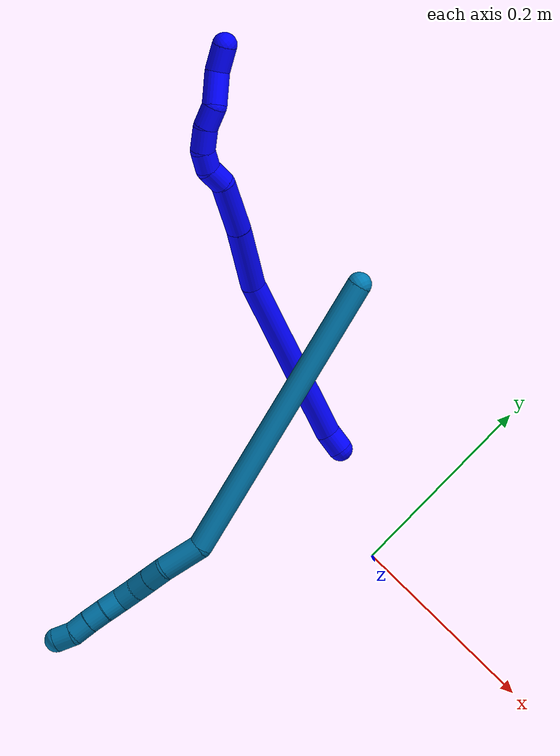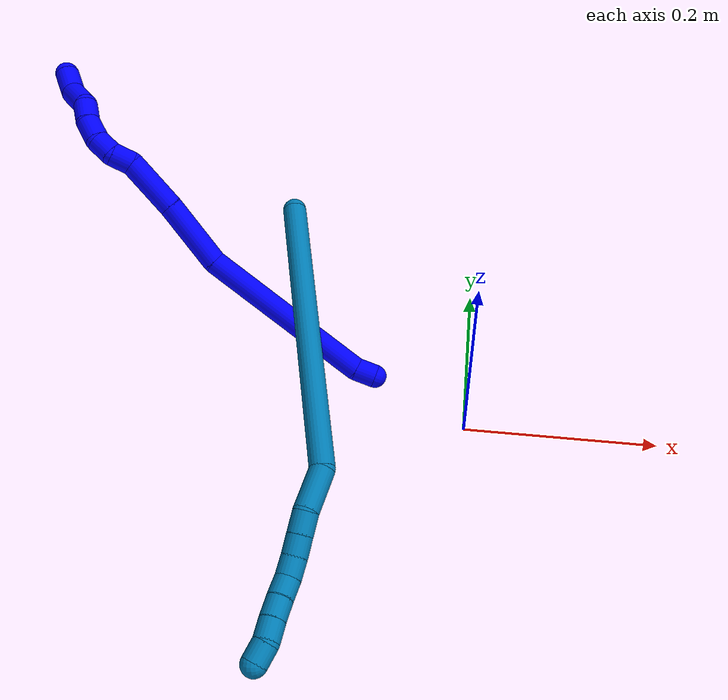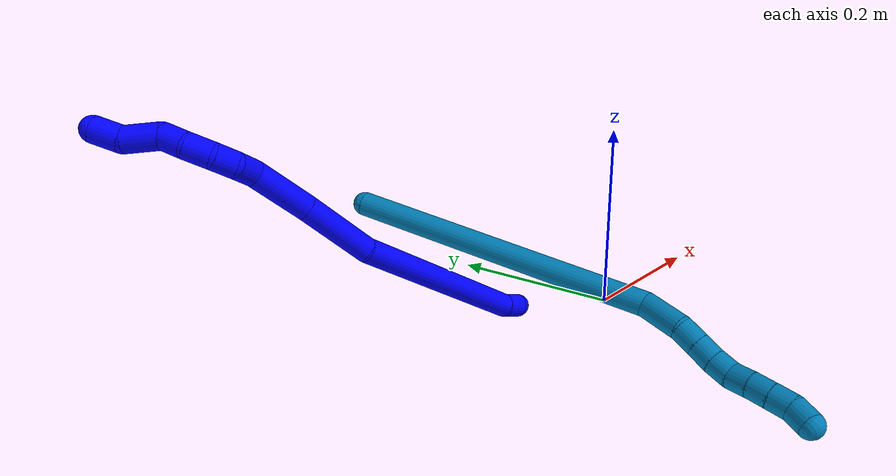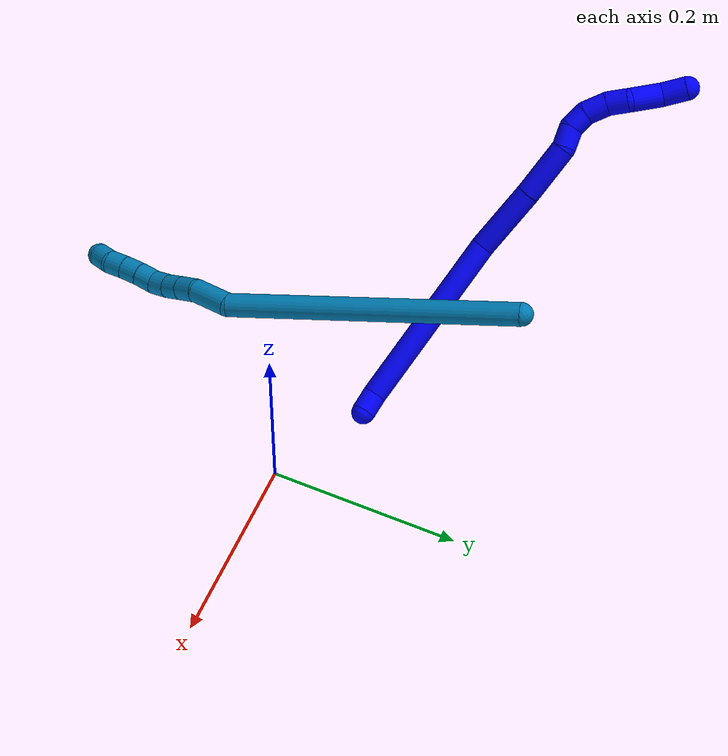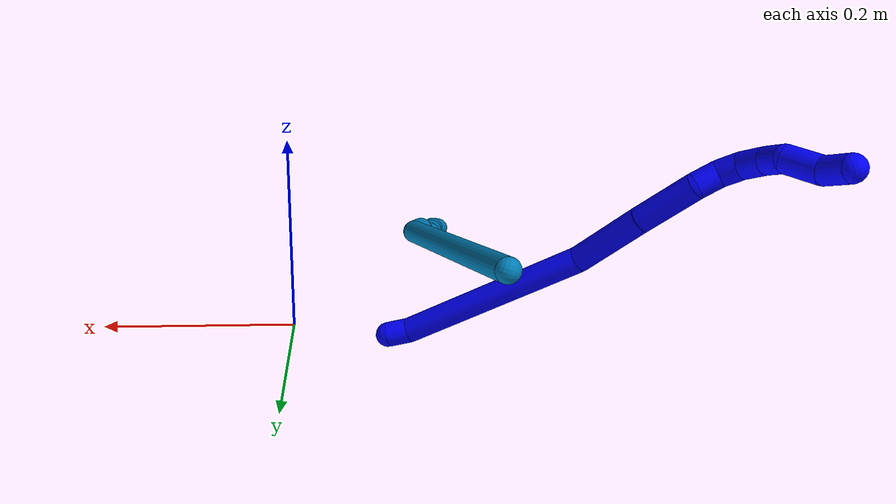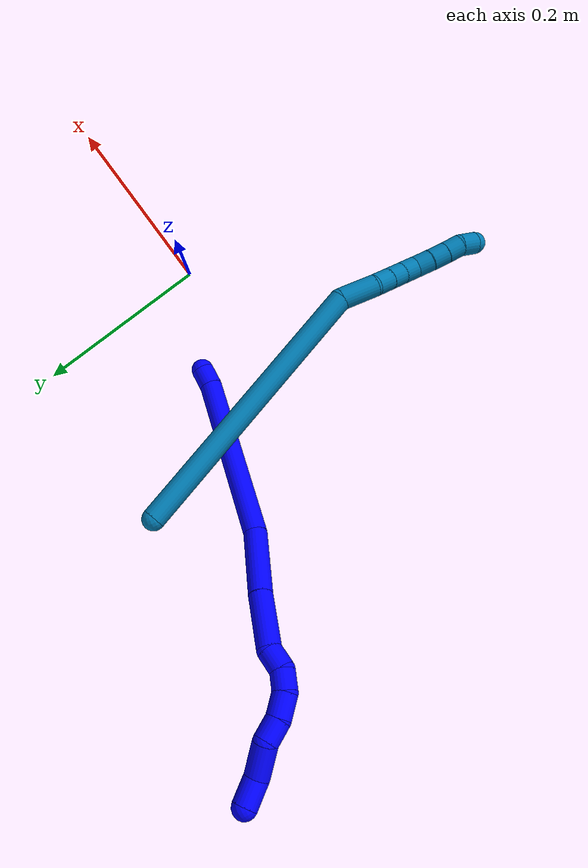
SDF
<sdf version="1.7">
 <world name="default">
  <model name="photoneo_s_sensor">
   <static>1</static>
   <pose>0 0 2 1.57079 1.57079 3.14159</pose>
   <link name="link">
    <inertial><mass>0.1</mass></inertial>
    <sensor name="sensor" type="depth">
     <update_rate>30</update_rate>
     <camera>
      <horizontal_fov>1.22</horizontal_fov>
      <image><width>1920</width><height>1200</height><format>B8G8R8</format></image>
      <clip><near>0.1</near><far>4</far></clip>
      <depth_camera><output>points</output></depth_camera>
     </camera>
     <plugin name="camera_plugin" filename="libgazebo_ros_depth_camera.so">
      <baseline>0.2</baseline>
      <alwaysOn>1</alwaysOn>
      <updateRate>0.0</updateRate>
      <cameraName>camera_ir</cameraName>
      <imageTopicName>/camera/color/image_raw</imageTopicName>
      <cameraInfoTopicName>/camera/color/camera_info</cameraInfoTopicName>
      <depthImageTopicName>/camera/depth/image_raw</depthImageTopicName>
      <depthImageCameraInfoTopicName>/camera/depth/camera_info</depthImageCameraInfoTopicName>
      <pointCloudTopicName>/camera/depth/points</pointCloudTopicName>
      <frameName>fr_optical</frameName>
      <pointCloudCutoff>0.1</pointCloudCutoff>
      <pointCloudCutoffMax>2.0</pointCloudCutoffMax>
      <distortionK1>0</distortionK1>
      <distortionK2>0</distortionK2>
      <distortionK3>0</distortionK3>
      <distortionT1>0</distortionT1>
      <distortionT2>0</distortionT2>
      <CxPrime>0</CxPrime>
      <Cx>0</Cx>
      <Cy>0</Cy>
      <focalLength>0</focalLength>
      <hackBaseline>0</hackBaseline>
     </plugin>
    </sensor>
   </link>
  </model>
  <model name="bin">
   <static>1</static>
   <link name="bottom">
    <collision name="collision-bottom">
     <pose>0 0 -0.01 0 -0 0</pose>
     <geometry><box><size>0.8 0.6 0.02</size></box></geometry>
     <surface>
      <friction><ode><mu>100</mu><mu2>100</mu2></ode></friction>
      <contact><collide_bitmask>65535</collide_bitmask></contact>
     </surface>
    </collision>
   </link>
   <link name="west_wall">
    <collision name="collision-west_wall">
     <pose>-0.41 0 0.1 0 -0 0</pose>
     <geometry><box><size>0.02 0.6 0.2</size></box></geometry>
     <surface>
      <friction><ode><mu>100</mu><mu2>100</mu2></ode></friction>
      <contact><collide_bitmask>65535</collide_bitmask></contact>
     </surface>
    </collision>
   </link>
   <link name="east_wall">
    <collision name="collision-east_wall">
     <pose>0.41 0 0.1 0 -0 0</pose>
     <geometry><box><size>0.02 0.6 0.2</size></box></geometry>
     <surface>
      <friction><ode><mu>100</mu><mu2>100</mu2></ode></friction>
      <contact><collide_bitmask>65535</collide_bitmask></contact>
     </surface>
    </collision>
   </link>
   <link name="south_wall">
    <collision name="collision-south_wall">
     <pose>0 -0.31 0.1 0 -0 0</pose>
     <geometry><box><size>0.8 0.02 0.2</size></box></geometry>
     <surface>
      <friction><ode><mu>100</mu><mu2>100</mu2></ode></friction>
      <contact><collide_bitmask>65535</collide_bitmask></contact>
     </surface>
    </collision>
   </link>
   <link name="north_wall">
    <collision name="collision-north_wall">
     <pose>0 0.31 0.1 0 -0 0</pose>
     <geometry><box><size>0.8 0.02 0.2</size></box></geometry>
     <surface>
      <friction><ode><mu>100</mu><mu2>100</mu2></ode></friction>
      <contact><collide_bitmask>65535</collide_bitmask></contact>
     </surface>
    </collision>
   </link>
  </model>
  <model name="1">
   <static>0</static>
   <link name="1">
    <collision name="collision-cylinder-e_1_1_4">
     <pose>0.000577 -0.000716 0.011127 0.064245 0.051738 0.001663</pose>
     <geometry><cylinder><radius>0.0125</radius><length>0.02233</length></cylinder></geometry>
     <surface>
      <friction><ode><mu>1.16</mu><mu2>1.16</mu2><slip1>0</slip1><slip2>0</slip2></ode></friction>
      <contact><ode><kp>1e+06</kp><kd>1</kd><max_vel>0</max_vel><min_depth>0.001</min_depth></ode></contact>
     </surface>
    </collision>
    <visual name="visual-cylinder-e_1_1_4">
     <pose>0.000577 -0.000716 0.011127 0.064245 0.051738 0.001663</pose>
     <geometry><cylinder><radius>0.0125</radius><length>0.02233</length></cylinder></geometry>
     <material><ambient>0 0 1 1</ambient></material>
    </visual>
    <collision name="collision-cylinder-e_2_4_5">
     <pose>-0.018459 0.006513 0.115256 -0.085223 -0.207122 0.008863</pose>
     <geometry><cylinder><radius>0.0125</radius><length>0.190759</length></cylinder></geometry>
     <surface>
      <friction><ode><mu>1.16</mu><mu2>1.16</mu2><slip1>0</slip1><slip2>0</slip2></ode></friction>
      <contact><ode><kp>1e+06</kp><kd>1</kd><max_vel>0</max_vel><min_depth>0.001</min_depth></ode></contact>
     </surface>
    </collision>
    <visual name="visual-cylinder-e_2_4_5">
     <pose>-0.018459 0.006513 0.115256 -0.085223 -0.207122 0.008863</pose>
     <geometry><cylinder><radius>0.0125</radius><length>0.190759</length></cylinder></geometry>
     <material><ambient>0 0 1 1</ambient></material>
    </visual>
    <collision name="collision-cylinder-e_3_5_6">
     <pose>-0.053827 0.021449 0.240852 -0.211278 -0.441465 0.047577</pose>
     <geometry><cylinder><radius>0.0125</radius><length>0.073739</length></cylinder></geometry>
     <surface>
      <friction><ode><mu>1.16</mu><mu2>1.16</mu2><slip1>0</slip1><slip2>0</slip2></ode></friction>
      <contact><ode><kp>1e+06</kp><kd>1</kd><max_vel>0</max_vel><min_depth>0.001</min_depth></ode></contact>
     </surface>
    </collision>
    <visual name="visual-cylinder-e_3_5_6">
     <pose>-0.053827 0.021449 0.240852 -0.211278 -0.441465 0.047577</pose>
     <geometry><cylinder><radius>0.0125</radius><length>0.073739</length></cylinder></geometry>
     <material><ambient>0 0 1 1</ambient></material>
    </visual>
    <collision name="collision-cylinder-e_4_6_7">
     <pose>-0.080454 0.034024 0.300626 -0.202639 -0.373479 0.038414</pose>
     <geometry><cylinder><radius>0.0125</radius><length>0.059607</length></cylinder></geometry>
     <surface>
      <friction><ode><mu>1.16</mu><mu2>1.16</mu2><slip1>0</slip1><slip2>0</slip2></ode></friction>
      <contact><ode><kp>1e+06</kp><kd>1</kd><max_vel>0</max_vel><min_depth>0.001</min_depth></ode></contact>
     </surface>
    </collision>
    <visual name="visual-cylinder-e_4_6_7">
     <pose>-0.080454 0.034024 0.300626 -0.202639 -0.373479 0.038414</pose>
     <geometry><cylinder><radius>0.0125</radius><length>0.059607</length></cylinder></geometry>
     <material><ambient>0 0 1 1</ambient></material>
    </visual>
    <collision name="collision-cylinder-e_5_7_8">
     <pose>-0.090684 0.042115 0.338866 -0.222877 0.05673 -0.00635</pose>
     <geometry><cylinder><radius>0.0125</radius><length>0.022715</length></cylinder></geometry>
     <surface>
      <friction><ode><mu>1.16</mu><mu2>1.16</mu2><slip1>0</slip1><slip2>0</slip2></ode></friction>
      <contact><ode><kp>1e+06</kp><kd>1</kd><max_vel>0</max_vel><min_depth>0.001</min_depth></ode></contact>
     </surface>
    </collision>
    <visual name="visual-cylinder-e_5_7_8">
     <pose>-0.090684 0.042115 0.338866 -0.222877 0.05673 -0.00635</pose>
     <geometry><cylinder><radius>0.0125</radius><length>0.022715</length></cylinder></geometry>
     <material><ambient>0 0 1 1</ambient></material>
    </visual>
    <collision name="collision-cylinder-e_6_8_9">
     <pose>-0.093591 0.044467 0.359723 0.015733 -0.34768 -0.002763</pose>
     <geometry><cylinder><radius>0.0125</radius><length>0.020848</length></cylinder></geometry>
     <surface>
      <friction><ode><mu>1.16</mu><mu2>1.16</mu2><slip1>0</slip1><slip2>0</slip2></ode></friction>
      <contact><ode><kp>1e+06</kp><kd>1</kd><max_vel>0</max_vel><min_depth>0.001</min_depth></ode></contact>
     </surface>
    </collision>
    <visual name="visual-cylinder-e_6_8_9">
     <pose>-0.093591 0.044467 0.359723 0.015733 -0.34768 -0.002763</pose>
     <geometry><cylinder><radius>0.0125</radius><length>0.020848</length></cylinder></geometry>
     <material><ambient>0 0 1 1</ambient></material>
    </visual>
    <collision name="collision-cylinder-e_7_9_10">
     <pose>-0.104846 0.041794 0.378902 0.262385 -0.670566 -0.091888</pose>
     <geometry><cylinder><radius>0.0125</radius><length>0.024792</length></cylinder></geometry>
     <surface>
      <friction><ode><mu>1.16</mu><mu2>1.16</mu2><slip1>0</slip1><slip2>0</slip2></ode></friction>
      <contact><ode><kp>1e+06</kp><kd>1</kd><max_vel>0</max_vel><min_depth>0.001</min_depth></ode></contact>
     </surface>
    </collision>
    <visual name="visual-cylinder-e_7_9_10">
     <pose>-0.104846 0.041794 0.378902 0.262385 -0.670566 -0.091888</pose>
     <geometry><cylinder><radius>0.0125</radius><length>0.024792</length></cylinder></geometry>
     <material><ambient>0 0 1 1</ambient></material>
    </visual>
    <collision name="collision-cylinder-e_8_10_11">
     <pose>-0.121523 0.035994 0.394625 0.477297 -0.898623 -0.233559</pose>
     <geometry><cylinder><radius>0.0125</radius><length>0.022938</length></cylinder></geometry>
     <surface>
      <friction><ode><mu>1.16</mu><mu2>1.16</mu2><slip1>0</slip1><slip2>0</slip2></ode></friction>
      <contact><ode><kp>1e+06</kp><kd>1</kd><max_vel>0</max_vel><min_depth>0.001</min_depth></ode></contact>
     </surface>
    </collision>
    <visual name="visual-cylinder-e_8_10_11">
     <pose>-0.121523 0.035994 0.394625 0.477297 -0.898623 -0.233559</pose>
     <geometry><cylinder><radius>0.0125</radius><length>0.022938</length></cylinder></geometry>
     <material><ambient>0 0 1 1</ambient></material>
    </visual>
    <collision name="collision-cylinder-e_9_11_12">
     <pose>-0.137524 0.022112 0.412729 0.733588 -0.417661 -0.162472</pose>
     <geometry><cylinder><radius>0.0125</radius><length>0.034647</length></cylinder></geometry>
     <surface>
      <friction><ode><mu>1.16</mu><mu2>1.16</mu2><slip1>0</slip1><slip2>0</slip2></ode></friction>
      <contact><ode><kp>1e+06</kp><kd>1</kd><max_vel>0</max_vel><min_depth>0.001</min_depth></ode></contact>
     </surface>
    </collision>
    <visual name="visual-cylinder-e_9_11_12">
     <pose>-0.137524 0.022112 0.412729 0.733588 -0.417661 -0.162472</pose>
     <geometry><cylinder><radius>0.0125</radius><length>0.034647</length></cylinder></geometry>
     <material><ambient>0 0 1 1</ambient></material>
    </visual>
    <collision name="collision-cylinder-e_10_12_2">
     <pose>-0.154232 0.007482 0.433484 0.421111 -0.77653 -0.174394</pose>
     <geometry><cylinder><radius>0.0125</radius><length>0.027627</length></cylinder></geometry>
     <surface>
      <friction><ode><mu>1.16</mu><mu2>1.16</mu2><slip1>0</slip1><slip2>0</slip2></ode></friction>
      <contact><ode><kp>1e+06</kp><kd>1</kd><max_vel>0</max_vel><min_depth>0.001</min_depth></ode></contact>
     </surface>
    </collision>
    <visual name="visual-cylinder-e_10_12_2">
     <pose>-0.154232 0.007482 0.433484 0.421111 -0.77653 -0.174394</pose>
     <geometry><cylinder><radius>0.0125</radius><length>0.027627</length></cylinder></geometry>
     <material><ambient>0 0 1 1</ambient></material>
    </visual>
    <collision name="collision-sphere-2">
     <pose>-0.163912 0.003454 0.442476 0 -0 0</pose>
     <geometry><sphere><radius>0.0125</radius></sphere></geometry>
     <surface>
      <friction><ode><mu>1.16</mu><mu2>1.16</mu2><slip1>0</slip1><slip2>0</slip2></ode></friction>
      <contact><ode><kp>1e+06</kp><kd>1</kd><max_vel>0</max_vel><min_depth>0.001</min_depth></ode></contact>
     </surface>
    </collision>
    <visual name="visual-sphere-2">
     <pose>-0.163912 0.003454 0.442476 0 -0 0</pose>
     <geometry><sphere><radius>0.0125</radius></sphere></geometry>
     <material><ambient>0 0 1 1</ambient></material>
    </visual>
    <collision name="collision-sphere-12">
     <pose>-0.144551 0.01151 0.424491 0 -0 0</pose>
     <geometry><sphere><radius>0.0125</radius></sphere></geometry>
     <surface>
      <friction><ode><mu>1.16</mu><mu2>1.16</mu2><slip1>0</slip1><slip2>0</slip2></ode></friction>
      <contact><ode><kp>1e+06</kp><kd>1</kd><max_vel>0</max_vel><min_depth>0.001</min_depth></ode></contact>
     </surface>
    </collision>
    <visual name="visual-sphere-12">
     <pose>-0.144551 0.01151 0.424491 0 -0 0</pose>
     <geometry><sphere><radius>0.0125</radius></sphere></geometry>
     <material><ambient>0 0 1 1</ambient></material>
    </visual>
    <collision name="collision-sphere-11">
     <pose>-0.130497 0.032714 0.400968 0 -0 0</pose>
     <geometry><sphere><radius>0.0125</radius></sphere></geometry>
     <surface>
      <friction><ode><mu>1.16</mu><mu2>1.16</mu2><slip1>0</slip1><slip2>0</slip2></ode></friction>
      <contact><ode><kp>1e+06</kp><kd>1</kd><max_vel>0</max_vel><min_depth>0.001</min_depth></ode></contact>
     </surface>
    </collision>
    <visual name="visual-sphere-11">
     <pose>-0.130497 0.032714 0.400968 0 -0 0</pose>
     <geometry><sphere><radius>0.0125</radius></sphere></geometry>
     <material><ambient>0 0 1 1</ambient></material>
    </visual>
    <collision name="collision-sphere-10">
     <pose>-0.112549 0.039275 0.388281 0 -0 0</pose>
     <geometry><sphere><radius>0.0125</radius></sphere></geometry>
     <surface>
      <friction><ode><mu>1.16</mu><mu2>1.16</mu2><slip1>0</slip1><slip2>0</slip2></ode></friction>
      <contact><ode><kp>1e+06</kp><kd>1</kd><max_vel>0</max_vel><min_depth>0.001</min_depth></ode></contact>
     </surface>
    </collision>
    <visual name="visual-sphere-10">
     <pose>-0.112549 0.039275 0.388281 0 -0 0</pose>
     <geometry><sphere><radius>0.0125</radius></sphere></geometry>
     <material><ambient>0 0 1 1</ambient></material>
    </visual>
    <collision name="collision-sphere-9">
     <pose>-0.097143 0.044313 0.369522 0 -0 0</pose>
     <geometry><sphere><radius>0.0125</radius></sphere></geometry>
     <surface>
      <friction><ode><mu>1.16</mu><mu2>1.16</mu2><slip1>0</slip1><slip2>0</slip2></ode></friction>
      <contact><ode><kp>1e+06</kp><kd>1</kd><max_vel>0</max_vel><min_depth>0.001</min_depth></ode></contact>
     </surface>
    </collision>
    <visual name="visual-sphere-9">
     <pose>-0.097143 0.044313 0.369522 0 -0 0</pose>
     <geometry><sphere><radius>0.0125</radius></sphere></geometry>
     <material><ambient>0 0 1 1</ambient></material>
    </visual>
    <collision name="collision-sphere-4">
     <pose>0.001155 -0.001432 0.022254 0 -0 0</pose>
     <geometry><sphere><radius>0.0125</radius></sphere></geometry>
     <surface>
      <friction><ode><mu>1.16</mu><mu2>1.16</mu2><slip1>0</slip1><slip2>0</slip2></ode></friction>
      <contact><ode><kp>1e+06</kp><kd>1</kd><max_vel>0</max_vel><min_depth>0.001</min_depth></ode></contact>
     </surface>
    </collision>
    <visual name="visual-sphere-4">
     <pose>0.001155 -0.001432 0.022254 0 -0 0</pose>
     <geometry><sphere><radius>0.0125</radius></sphere></geometry>
     <material><ambient>0 0 1 1</ambient></material>
    </visual>
    <collision name="collision-sphere-1">
     <geometry><sphere><radius>0.0125</radius></sphere></geometry>
     <surface>
      <friction><ode><mu>1.16</mu><mu2>1.16</mu2><slip1>0</slip1><slip2>0</slip2></ode></friction>
      <contact><ode><kp>1e+06</kp><kd>1</kd><max_vel>0</max_vel><min_depth>0.001</min_depth></ode></contact>
     </surface>
    </collision>
    <visual name="visual-sphere-1">
     <geometry><sphere><radius>0.0125</radius></sphere></geometry>
     <material><ambient>0 0 1 1</ambient></material>
    </visual>
    <collision name="collision-sphere-8">
     <pose>-0.09004 0.044622 0.349924 0 -0 0</pose>
     <geometry><sphere><radius>0.0125</radius></sphere></geometry>
     <surface>
      <friction><ode><mu>1.16</mu><mu2>1.16</mu2><slip1>0</slip1><slip2>0</slip2></ode></friction>
      <contact><ode><kp>1e+06</kp><kd>1</kd><max_vel>0</max_vel><min_depth>0.001</min_depth></ode></contact>
     </surface>
    </collision>
    <visual name="visual-sphere-8">
     <pose>-0.09004 0.044622 0.349924 0 -0 0</pose>
     <geometry><sphere><radius>0.0125</radius></sphere></geometry>
     <material><ambient>0 0 1 1</ambient></material>
    </visual>
    <collision name="collision-sphere-5">
     <pose>-0.038074 0.014459 0.208258 0 -0 0</pose>
     <geometry><sphere><radius>0.0125</radius></sphere></geometry>
     <surface>
      <friction><ode><mu>1.16</mu><mu2>1.16</mu2><slip1>0</slip1><slip2>0</slip2></ode></friction>
      <contact><ode><kp>1e+06</kp><kd>1</kd><max_vel>0</max_vel><min_depth>0.001</min_depth></ode></contact>
     </surface>
    </collision>
    <visual name="visual-sphere-5">
     <pose>-0.038074 0.014459 0.208258 0 -0 0</pose>
     <geometry><sphere><radius>0.0125</radius></sphere></geometry>
     <material><ambient>0 0 1 1</ambient></material>
    </visual>
    <collision name="collision-sphere-6">
     <pose>-0.06958 0.02844 0.273445 0 -0 0</pose>
     <geometry><sphere><radius>0.0125</radius></sphere></geometry>
     <surface>
      <friction><ode><mu>1.16</mu><mu2>1.16</mu2><slip1>0</slip1><slip2>0</slip2></ode></friction>
      <contact><ode><kp>1e+06</kp><kd>1</kd><max_vel>0</max_vel><min_depth>0.001</min_depth></ode></contact>
     </surface>
    </collision>
    <visual name="visual-sphere-6">
     <pose>-0.06958 0.02844 0.273445 0 -0 0</pose>
     <geometry><sphere><radius>0.0125</radius></sphere></geometry>
     <material><ambient>0 0 1 1</ambient></material>
    </visual>
    <collision name="collision-sphere-7">
     <pose>-0.091328 0.039609 0.327807 0 -0 0</pose>
     <geometry><sphere><radius>0.0125</radius></sphere></geometry>
     <surface>
      <friction><ode><mu>1.16</mu><mu2>1.16</mu2><slip1>0</slip1><slip2>0</slip2></ode></friction>
      <contact><ode><kp>1e+06</kp><kd>1</kd><max_vel>0</max_vel><min_depth>0.001</min_depth></ode></contact>
     </surface>
    </collision>
    <visual name="visual-sphere-7">
     <pose>-0.091328 0.039609 0.327807 0 -0 0</pose>
     <geometry><sphere><radius>0.0125</radius></sphere></geometry>
     <material><ambient>0 0 1 1</ambient></material>
    </visual>
    <inertial>
     <pose>-0.061393 0.019109 0.235663 0 -0 0</pose>
     <mass>0.5</mass>
     <inertia>
      <ixx>0.000632</ixx>
      <ixy>0</ixy>
      <ixz>0</ixz>
      <iyy>0.000661</iyy>
      <iyz>0</iyz>
      <izz>0.00013</izz>
     </inertia>
    </inertial>
   </link>
   <pose>-0.099406 0.054924 0.011475 1.18275 0.469855 -1.91726</pose>
  </model>
  <model name="9">
   <static>0</static>
   <link name="9">
    <collision name="collision-cylinder-e_1_1_4">
     <pose>-0.062427 -0.134126 0.052536 1.19747 -0.408946 -0.281106</pose>
     <geometry><cylinder><radius>0.0125</radius><length>0.313988</length></cylinder></geometry>
     <surface>
      <friction><ode><mu>1.16</mu><mu2>1.16</mu2><slip1>0</slip1><slip2>0</slip2></ode></friction>
      <contact><ode><kp>1e+06</kp><kd>1</kd><max_vel>0</max_vel><min_depth>0.001</min_depth></ode></contact>
     </surface>
    </collision>
    <visual name="visual-cylinder-e_1_1_4">
     <pose>-0.062427 -0.134126 0.052536 1.19747 -0.408946 -0.281106</pose>
     <geometry><cylinder><radius>0.0125</radius><length>0.313988</length></cylinder></geometry>
     <material><ambient>0 0.490196 0.709804 1</ambient></material>
    </visual>
    <collision name="collision-cylinder-e_2_4_5">
     <pose>-0.136287 -0.286827 0.103001 1.68184 -0.548934 -0.609804</pose>
     <geometry><cylinder><radius>0.0125</radius><length>0.043818</length></cylinder></geometry>
     <surface>
      <friction><ode><mu>1.16</mu><mu2>1.16</mu2><slip1>0</slip1><slip2>0</slip2></ode></friction>
      <contact><ode><kp>1e+06</kp><kd>1</kd><max_vel>0</max_vel><min_depth>0.001</min_depth></ode></contact>
     </surface>
    </collision>
    <visual name="visual-cylinder-e_2_4_5">
     <pose>-0.136287 -0.286827 0.103001 1.68184 -0.548934 -0.609804</pose>
     <geometry><cylinder><radius>0.0125</radius><length>0.043818</length></cylinder></geometry>
     <material><ambient>0 0.490196 0.709804 1</ambient></material>
    </visual>
    <collision name="collision-cylinder-e_3_5_6">
     <pose>-0.150685 -0.315835 0.099736 1.68478 -0.275371 -0.308196</pose>
     <geometry><cylinder><radius>0.0125</radius><length>0.021822</length></cylinder></geometry>
     <surface>
      <friction><ode><mu>1.16</mu><mu2>1.16</mu2><slip1>0</slip1><slip2>0</slip2></ode></friction>
      <contact><ode><kp>1e+06</kp><kd>1</kd><max_vel>0</max_vel><min_depth>0.001</min_depth></ode></contact>
     </surface>
    </collision>
    <visual name="visual-cylinder-e_3_5_6">
     <pose>-0.150685 -0.315835 0.099736 1.68478 -0.275371 -0.308196</pose>
     <geometry><cylinder><radius>0.0125</radius><length>0.021822</length></cylinder></geometry>
     <material><ambient>0 0.490196 0.709804 1</ambient></material>
    </visual>
    <collision name="collision-cylinder-e_4_6_7">
     <pose>-0.15631 -0.335917 0.097455 1.68296 -0.26711 -0.29844</pose>
     <geometry><cylinder><radius>0.0125</radius><length>0.020137</length></cylinder></geometry>
     <surface>
      <friction><ode><mu>1.16</mu><mu2>1.16</mu2><slip1>0</slip1><slip2>0</slip2></ode></friction>
      <contact><ode><kp>1e+06</kp><kd>1</kd><max_vel>0</max_vel><min_depth>0.001</min_depth></ode></contact>
     </surface>
    </collision>
    <visual name="visual-cylinder-e_4_6_7">
     <pose>-0.15631 -0.335917 0.097455 1.68296 -0.26711 -0.29844</pose>
     <geometry><cylinder><radius>0.0125</radius><length>0.020137</length></cylinder></geometry>
     <material><ambient>0 0.490196 0.709804 1</ambient></material>
    </visual>
    <collision name="collision-cylinder-e_5_7_8">
     <pose>-0.162823 -0.354811 0.095453 1.66947 -0.393466 -0.433132</pose>
     <geometry><cylinder><radius>0.0125</radius><length>0.020115</length></cylinder></geometry>
     <surface>
      <friction><ode><mu>1.16</mu><mu2>1.16</mu2><slip1>0</slip1><slip2>0</slip2></ode></friction>
      <contact><ode><kp>1e+06</kp><kd>1</kd><max_vel>0</max_vel><min_depth>0.001</min_depth></ode></contact>
     </surface>
    </collision>
    <visual name="visual-cylinder-e_5_7_8">
     <pose>-0.162823 -0.354811 0.095453 1.66947 -0.393466 -0.433132</pose>
     <geometry><cylinder><radius>0.0125</radius><length>0.020115</length></cylinder></geometry>
     <material><ambient>0 0.490196 0.709804 1</ambient></material>
    </visual>
    <collision name="collision-cylinder-e_6_8_9">
     <pose>-0.173085 -0.371751 0.094282 1.60396 -0.693913 -0.715399</pose>
     <geometry><cylinder><radius>0.0125</radius><length>0.020034</length></cylinder></geometry>
     <surface>
      <friction><ode><mu>1.16</mu><mu2>1.16</mu2><slip1>0</slip1><slip2>0</slip2></ode></friction>
      <contact><ode><kp>1e+06</kp><kd>1</kd><max_vel>0</max_vel><min_depth>0.001</min_depth></ode></contact>
     </surface>
    </collision>
    <visual name="visual-cylinder-e_6_8_9">
     <pose>-0.173085 -0.371751 0.094282 1.60396 -0.693913 -0.715399</pose>
     <geometry><cylinder><radius>0.0125</radius><length>0.020034</length></cylinder></geometry>
     <material><ambient>0 0.490196 0.709804 1</ambient></material>
    </visual>
    <collision name="collision-cylinder-e_7_9_10">
     <pose>-0.185244 -0.387637 0.093787 1.60001 -0.612127 -0.629117</pose>
     <geometry><cylinder><radius>0.0125</radius><length>0.020022</length></cylinder></geometry>
     <surface>
      <friction><ode><mu>1.16</mu><mu2>1.16</mu2><slip1>0</slip1><slip2>0</slip2></ode></friction>
      <contact><ode><kp>1e+06</kp><kd>1</kd><max_vel>0</max_vel><min_depth>0.001</min_depth></ode></contact>
     </surface>
    </collision>
    <visual name="visual-cylinder-e_7_9_10">
     <pose>-0.185244 -0.387637 0.093787 1.60001 -0.612127 -0.629117</pose>
     <geometry><cylinder><radius>0.0125</radius><length>0.020022</length></cylinder></geometry>
     <material><ambient>0 0.490196 0.709804 1</ambient></material>
    </visual>
    <collision name="collision-cylinder-e_8_10_11">
     <pose>-0.196381 -0.404275 0.093646 1.55919 -0.567405 -0.561197</pose>
     <geometry><cylinder><radius>0.0125</radius><length>0.020037</length></cylinder></geometry>
     <surface>
      <friction><ode><mu>1.16</mu><mu2>1.16</mu2><slip1>0</slip1><slip2>0</slip2></ode></friction>
      <contact><ode><kp>1e+06</kp><kd>1</kd><max_vel>0</max_vel><min_depth>0.001</min_depth></ode></contact>
     </surface>
    </collision>
    <visual name="visual-cylinder-e_8_10_11">
     <pose>-0.196381 -0.404275 0.093646 1.55919 -0.567405 -0.561197</pose>
     <geometry><cylinder><radius>0.0125</radius><length>0.020037</length></cylinder></geometry>
     <material><ambient>0 0.490196 0.709804 1</ambient></material>
    </visual>
    <collision name="collision-cylinder-e_9_11_2">
     <pose>-0.206306 -0.421156 0.090823 1.90433 -0.470631 -0.649753</pose>
     <geometry><cylinder><radius>0.0125</radius><length>0.020026</length></cylinder></geometry>
     <surface>
      <friction><ode><mu>1.16</mu><mu2>1.16</mu2><slip1>0</slip1><slip2>0</slip2></ode></friction>
      <contact><ode><kp>1e+06</kp><kd>1</kd><max_vel>0</max_vel><min_depth>0.001</min_depth></ode></contact>
     </surface>
    </collision>
    <visual name="visual-cylinder-e_9_11_2">
     <pose>-0.206306 -0.421156 0.090823 1.90433 -0.470631 -0.649753</pose>
     <geometry><cylinder><radius>0.0125</radius><length>0.020026</length></cylinder></geometry>
     <material><ambient>0 0.490196 0.709804 1</ambient></material>
    </visual>
    <collision name="collision-sphere-2">
     <pose>-0.210846 -0.429589 0.087901 0 -0 0</pose>
     <geometry><sphere><radius>0.0125</radius></sphere></geometry>
     <surface>
      <friction><ode><mu>1.16</mu><mu2>1.16</mu2><slip1>0</slip1><slip2>0</slip2></ode></friction>
      <contact><ode><kp>1e+06</kp><kd>1</kd><max_vel>0</max_vel><min_depth>0.001</min_depth></ode></contact>
     </surface>
    </collision>
    <visual name="visual-sphere-2">
     <pose>-0.210846 -0.429589 0.087901 0 -0 0</pose>
     <geometry><sphere><radius>0.0125</radius></sphere></geometry>
     <material><ambient>0 0.490196 0.709804 1</ambient></material>
    </visual>
    <collision name="collision-sphere-11">
     <pose>-0.201766 -0.412724 0.093744 0 -0 0</pose>
     <geometry><sphere><radius>0.0125</radius></sphere></geometry>
     <surface>
      <friction><ode><mu>1.16</mu><mu2>1.16</mu2><slip1>0</slip1><slip2>0</slip2></ode></friction>
      <contact><ode><kp>1e+06</kp><kd>1</kd><max_vel>0</max_vel><min_depth>0.001</min_depth></ode></contact>
     </surface>
    </collision>
    <visual name="visual-sphere-11">
     <pose>-0.201766 -0.412724 0.093744 0 -0 0</pose>
     <geometry><sphere><radius>0.0125</radius></sphere></geometry>
     <material><ambient>0 0.490196 0.709804 1</ambient></material>
    </visual>
    <collision name="collision-sphere-10">
     <pose>-0.190997 -0.395827 0.093548 0 -0 0</pose>
     <geometry><sphere><radius>0.0125</radius></sphere></geometry>
     <surface>
      <friction><ode><mu>1.16</mu><mu2>1.16</mu2><slip1>0</slip1><slip2>0</slip2></ode></friction>
      <contact><ode><kp>1e+06</kp><kd>1</kd><max_vel>0</max_vel><min_depth>0.001</min_depth></ode></contact>
     </surface>
    </collision>
    <visual name="visual-sphere-10">
     <pose>-0.190997 -0.395827 0.093548 0 -0 0</pose>
     <geometry><sphere><radius>0.0125</radius></sphere></geometry>
     <material><ambient>0 0.490196 0.709804 1</ambient></material>
    </visual>
    <collision name="collision-sphere-9">
     <pose>-0.179492 -0.379448 0.094027 0 -0 0</pose>
     <geometry><sphere><radius>0.0125</radius></sphere></geometry>
     <surface>
      <friction><ode><mu>1.16</mu><mu2>1.16</mu2><slip1>0</slip1><slip2>0</slip2></ode></friction>
      <contact><ode><kp>1e+06</kp><kd>1</kd><max_vel>0</max_vel><min_depth>0.001</min_depth></ode></contact>
     </surface>
    </collision>
    <visual name="visual-sphere-9">
     <pose>-0.179492 -0.379448 0.094027 0 -0 0</pose>
     <geometry><sphere><radius>0.0125</radius></sphere></geometry>
     <material><ambient>0 0.490196 0.709804 1</ambient></material>
    </visual>
    <collision name="collision-sphere-4">
     <pose>-0.124855 -0.268252 0.105073 0 -0 0</pose>
     <geometry><sphere><radius>0.0125</radius></sphere></geometry>
     <surface>
      <friction><ode><mu>1.16</mu><mu2>1.16</mu2><slip1>0</slip1><slip2>0</slip2></ode></friction>
      <contact><ode><kp>1e+06</kp><kd>1</kd><max_vel>0</max_vel><min_depth>0.001</min_depth></ode></contact>
     </surface>
    </collision>
    <visual name="visual-sphere-4">
     <pose>-0.124855 -0.268252 0.105073 0 -0 0</pose>
     <geometry><sphere><radius>0.0125</radius></sphere></geometry>
     <material><ambient>0 0.490196 0.709804 1</ambient></material>
    </visual>
    <collision name="collision-sphere-1">
     <geometry><sphere><radius>0.0125</radius></sphere></geometry>
     <surface>
      <friction><ode><mu>1.16</mu><mu2>1.16</mu2><slip1>0</slip1><slip2>0</slip2></ode></friction>
      <contact><ode><kp>1e+06</kp><kd>1</kd><max_vel>0</max_vel><min_depth>0.001</min_depth></ode></contact>
     </surface>
    </collision>
    <visual name="visual-sphere-1">
     <geometry><sphere><radius>0.0125</radius></sphere></geometry>
     <material><ambient>0 0.490196 0.709804 1</ambient></material>
    </visual>
    <collision name="collision-sphere-8">
     <pose>-0.166679 -0.364055 0.094537 0 -0 0</pose>
     <geometry><sphere><radius>0.0125</radius></sphere></geometry>
     <surface>
      <friction><ode><mu>1.16</mu><mu2>1.16</mu2><slip1>0</slip1><slip2>0</slip2></ode></friction>
      <contact><ode><kp>1e+06</kp><kd>1</kd><max_vel>0</max_vel><min_depth>0.001</min_depth></ode></contact>
     </surface>
    </collision>
    <visual name="visual-sphere-8">
     <pose>-0.166679 -0.364055 0.094537 0 -0 0</pose>
     <geometry><sphere><radius>0.0125</radius></sphere></geometry>
     <material><ambient>0 0.490196 0.709804 1</ambient></material>
    </visual>
    <collision name="collision-sphere-5">
     <pose>-0.147718 -0.305403 0.10093 0 -0 0</pose>
     <geometry><sphere><radius>0.0125</radius></sphere></geometry>
     <surface>
      <friction><ode><mu>1.16</mu><mu2>1.16</mu2><slip1>0</slip1><slip2>0</slip2></ode></friction>
      <contact><ode><kp>1e+06</kp><kd>1</kd><max_vel>0</max_vel><min_depth>0.001</min_depth></ode></contact>
     </surface>
    </collision>
    <visual name="visual-sphere-5">
     <pose>-0.147718 -0.305403 0.10093 0 -0 0</pose>
     <geometry><sphere><radius>0.0125</radius></sphere></geometry>
     <material><ambient>0 0.490196 0.709804 1</ambient></material>
    </visual>
    <collision name="collision-sphere-6">
     <pose>-0.153652 -0.326266 0.098542 0 -0 0</pose>
     <geometry><sphere><radius>0.0125</radius></sphere></geometry>
     <surface>
      <friction><ode><mu>1.16</mu><mu2>1.16</mu2><slip1>0</slip1><slip2>0</slip2></ode></friction>
      <contact><ode><kp>1e+06</kp><kd>1</kd><max_vel>0</max_vel><min_depth>0.001</min_depth></ode></contact>
     </surface>
    </collision>
    <visual name="visual-sphere-6">
     <pose>-0.153652 -0.326266 0.098542 0 -0 0</pose>
     <geometry><sphere><radius>0.0125</radius></sphere></geometry>
     <material><ambient>0 0.490196 0.709804 1</ambient></material>
    </visual>
    <collision name="collision-sphere-7">
     <pose>-0.158967 -0.345568 0.096368 0 -0 0</pose>
     <geometry><sphere><radius>0.0125</radius></sphere></geometry>
     <surface>
      <friction><ode><mu>1.16</mu><mu2>1.16</mu2><slip1>0</slip1><slip2>0</slip2></ode></friction>
      <contact><ode><kp>1e+06</kp><kd>1</kd><max_vel>0</max_vel><min_depth>0.001</min_depth></ode></contact>
     </surface>
    </collision>
    <visual name="visual-sphere-7">
     <pose>-0.158967 -0.345568 0.096368 0 -0 0</pose>
     <geometry><sphere><radius>0.0125</radius></sphere></geometry>
     <material><ambient>0 0.490196 0.709804 1</ambient></material>
    </visual>
    <inertial>
     <pose>-0.101055 -0.214439 0.06906 0 -0 0</pose>
     <mass>0.5</mass>
     <inertia>
      <ixx>0.001614</ixx>
      <ixy>0</ixy>
      <ixz>0</ixz>
      <iyy>0.000476</iyy>
      <iyz>0</iyz>
      <izz>0.003278</izz>
     </inertia>
    </inertial>
   </link>
   <pose>-0.202372 0.185499 0.128591 1.17546 0.762011 1.09199</pose>
  </model>
 </world>
</sdf>
